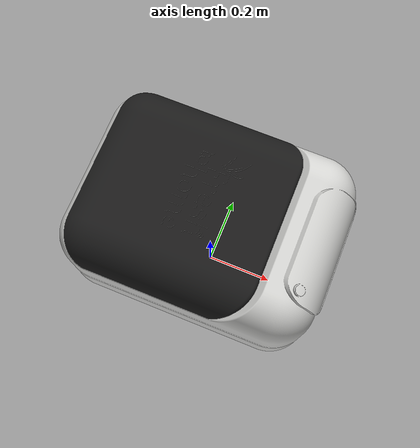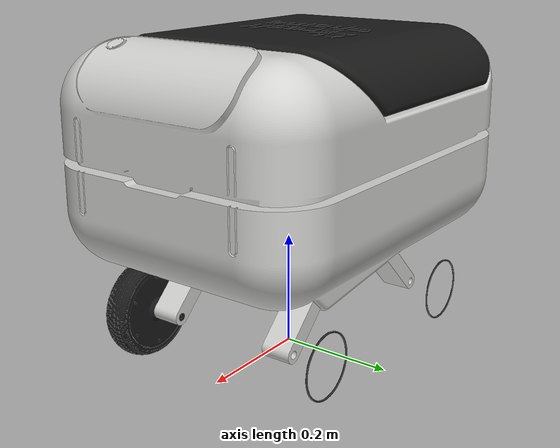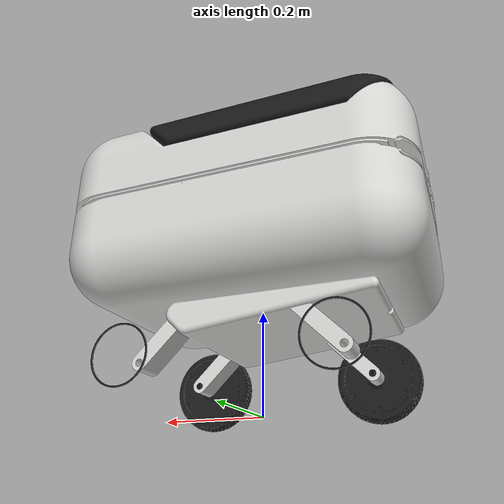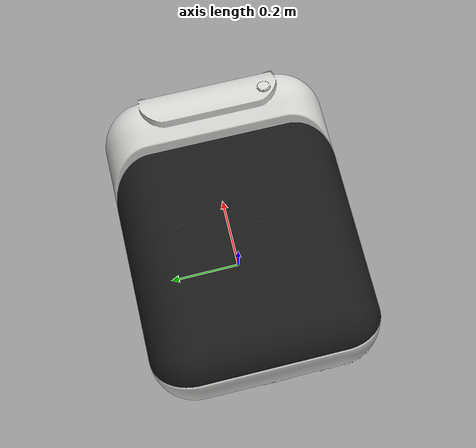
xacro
<?xml version="1.0" ?>
<robot name="finalfresh" xmlns:xacro="http://ros.org/wiki/xacro">

<xacro:include filename="$(find finalfresh_description)/urdf/robot.trans" />
<xacro:include filename="$(find finalfresh_description)/urdf/robot.gazebo.xacro" />

<link name="base_footprint"></link>
<joint name="base_footprint_to_base_link" type="fixed">
<parent link="base_footprint"/>
<child link="base_link" />
<origin rpy="0 0 0" xyz="0 0 0.318014"/>
</joint>

<link name="base_link">
<collision>
<origin xyz="0.181689 -0.142997 -0.232021" rpy="0 -0 1.249e-16" />
<geometry>
<mesh filename="package://finalfresh_description/meshes/component1.stl"/>
</geometry>
<material name="component1_material">
<color rgba="0.0980392 0.0980392 0.0980392 1.0"/>
</material>
</collision>
<collision>
<origin xyz="-1.16744 0.94699 -0.869947" rpy="0 -0 1.80411e-16" />
<geometry>
<mesh filename="package://finalfresh_description/meshes/component6.stl"/>
</geometry>
<material name="component6_material">
<color rgba="0.627451 0.627451 0.627451 1.0"/>
</material>
</collision>
<collision>
<origin xyz="-0.733912 1.62576 -0.729513" rpy="0 -0 1.80411e-16" />
<geometry>
<mesh filename="package://finalfresh_description/meshes/component2.stl"/>
</geometry>
<material name="component2_material">
<color rgba="0.627451 0.627451 0.627451 1.0"/>
</material>
</collision>
<collision>
<origin xyz="-0.188488 -0.0917969 -0.232021" rpy="4.08624e-14 4.58217e-30 -3.14159" />
<geometry>
<mesh filename="package://finalfresh_description/meshes/component1.stl"/>
</geometry>
<material name="component1_material">
<color rgba="0.0980392 0.0980392 0.0980392 1.0"/>
</material>
</collision>
<collision>
<origin xyz="-1.13629 1.06847 -1.00098" rpy="0 -0 1.80411e-16" />
<geometry>
<mesh filename="package://finalfresh_description/meshes/component7.stl"/>
</geometry>
<material name="component7_material">
<color rgba="0.0980392 0.0980392 0.0980392 1.0"/>
</material>
</collision>
<collision>
<origin xyz="-1.16744 0.94699 -0.869947" rpy="0 -0 1.80411e-16" />
<geometry>
<mesh filename="package://finalfresh_description/meshes/component6.stl"/>
</geometry>
<material name="component6_material">
<color rgba="0.627451 0.627451 0.627451 1.0"/>
</material>
</collision>
<collision>
<origin xyz="-0.733912 1.62576 -0.729513" rpy="0 -0 1.80411e-16" />
<geometry>
<mesh filename="package://finalfresh_description/meshes/component2.stl"/>
</geometry>
<material name="component2_material">
<color rgba="0.627451 0.627451 0.627451 1.0"/>
</material>
</collision>
<collision>
<origin xyz="-0.733912 1.62576 -0.729513" rpy="0 -0 1.80411e-16" />
<geometry>
<mesh filename="package://finalfresh_description/meshes/component2.stl"/>
</geometry>
<material name="component2_material">
<color rgba="0.627451 0.627451 0.627451 1.0"/>
</material>
</collision>
<collision>
<origin xyz="-1.16744 0.94699 -0.869947" rpy="0 -0 1.80411e-16" />
<geometry>
<mesh filename="package://finalfresh_description/meshes/component6.stl"/>
</geometry>
<material name="component6_material">
<color rgba="0.627451 0.627451 0.627451 1.0"/>
</material>
</collision>
<collision>
<origin xyz="-0.733912 1.62576 -0.729513" rpy="0 -0 1.80411e-16" />
<geometry>
<mesh filename="package://finalfresh_description/meshes/component2.stl"/>
</geometry>
<material name="component2_material">
<color rgba="0.627451 0.627451 0.627451 1.0"/>
</material>
</collision>
<collision>
<origin xyz="-0.733912 1.62576 -0.729513" rpy="0 -0 1.80411e-16" />
<geometry>
<mesh filename="package://finalfresh_description/meshes/component2.stl"/>
</geometry>
<material name="component2_material">
<color rgba="0.627451 0.627451 0.627451 1.0"/>
</material>
</collision>
<collision>
<origin xyz="-0.733912 1.62576 -0.729513" rpy="0 -0 1.80411e-16" />
<geometry>
<mesh filename="package://finalfresh_description/meshes/component2.stl"/>
</geometry>
<material name="component2_material">
<color rgba="0.627451 0.627451 0.627451 1.0"/>
</material>
</collision>
<collision>
<origin xyz="-0.188488 0.143203 -0.232021" rpy="4.08624e-14 -8.01149e-14 3.14159" />
<geometry>
<mesh filename="package://finalfresh_description/meshes/component1.stl"/>
</geometry>
<material name="component1_material">
<color rgba="0.0980392 0.0980392 0.0980392 1.0"/>
</material>
</collision>
<collision>
<origin xyz="-0.0839315 0.825754 -1.1338" rpy="4.0626e-14 -0.000575215 -3.14159" />
<geometry>
<mesh filename="package://finalfresh_description/meshes/component4.stl"/>
</geometry>
<material name="component4_material">
<color rgba="0.0980392 0.0980392 0.0980392 1.0"/>
</material>
</collision>
<collision>
<origin xyz="-1.16744 0.94699 -0.869947" rpy="0 -0 1.80411e-16" />
<geometry>
<mesh filename="package://finalfresh_description/meshes/component6.stl"/>
</geometry>
<material name="component6_material">
<color rgba="0.627451 0.627451 0.627451 1.0"/>
</material>
</collision>
<collision>
<origin xyz="-1.16744 0.94699 -0.869947" rpy="0 -0 1.80411e-16" />
<geometry>
<mesh filename="package://finalfresh_description/meshes/component6.stl"/>
</geometry>
<material name="component6_material">
<color rgba="0.627451 0.627451 0.627451 1.0"/>
</material>
</collision>
<collision>
<origin xyz="-0.733912 1.62576 -0.729513" rpy="-6.12323e-17 2.49603e-29 1.80411e-16" />
<geometry>
<mesh filename="package://finalfresh_description/meshes/upper_base.stl"/>
</geometry>
<material name="upper_base_material">
<color rgba="0.964706 0.964706 0.952941 1.0"/>
</material>
</collision>
<collision>
<origin xyz="-1.16744 0.94699 -0.869947" rpy="0 -0 1.80411e-16" />
<geometry>
<mesh filename="package://finalfresh_description/meshes/component6.stl"/>
</geometry>
<material name="component6_material">
<color rgba="0.627451 0.627451 0.627451 1.0"/>
</material>
</collision>
<collision>
<origin xyz="-0.140445 -0.507503 -1.32618" rpy="0 -0 1.80411e-16" />
<geometry>
<mesh filename="package://finalfresh_description/meshes/component5.stl"/>
</geometry>
<material name="component5_material">
<color rgba="0.627451 0.627451 0.627451 1.0"/>
</material>
</collision>
<collision>
<origin xyz="-0.733912 1.62576 -0.729513" rpy="0 -0 1.80411e-16" />
<geometry>
<mesh filename="package://finalfresh_description/meshes/component2.stl"/>
</geometry>
<material name="component2_material">
<color rgba="0.627451 0.627451 0.627451 1.0"/>
</material>
</collision>
<collision>
<origin xyz="-1.16744 0.94699 -0.869947" rpy="0 -0 1.80411e-16" />
<geometry>
<mesh filename="package://finalfresh_description/meshes/component6.stl"/>
</geometry>
<material name="component6_material">
<color rgba="0.627451 0.627451 0.627451 1.0"/>
</material>
</collision>
<collision>
<origin xyz="-1.13129 1.06847 -1.00098" rpy="0 -0 1.80411e-16" />
<geometry>
<mesh filename="package://finalfresh_description/meshes/lower_base.stl"/>
</geometry>
<material name="lower_base_material">
<color rgba="0.964706 0.964706 0.952941 1.0"/>
</material>
</collision>
<collision>
<origin xyz="-0.733912 1.62576 -0.729513" rpy="0 -0 1.80411e-16" />
<geometry>
<mesh filename="package://finalfresh_description/meshes/component2.stl"/>
</geometry>
<material name="component2_material">
<color rgba="0.627451 0.627451 0.627451 1.0"/>
</material>
</collision>
<collision>
<origin xyz="0.181689 0.0918031 -0.232021" rpy="0 -0 1.249e-16" />
<geometry>
<mesh filename="package://finalfresh_description/meshes/component1.stl"/>
</geometry>
<material name="component1_material">
<color rgba="0.0980392 0.0980392 0.0980392 1.0"/>
</material>
</collision>
<visual>
<origin xyz="0 0 0" rpy="0 -0 0" />
<geometry>
<mesh filename="package://finalfresh_description/meshes/base_link_new_5.dae"/>
</geometry>
<material name="base_link_material">
<color rgba="0.819182 0.819182 0.809403 1.0"/>
</material>
</visual>
<inertial>
<origin xyz="-0.00886666 -3.82194e-05 -0.0364475" rpy="0 0 0"/>
<mass value="54.4024" />
<inertia ixx="1.64694" ixy="-0.000325604"  ixz="-0.0856798" iyy="2.75505" iyz="0.000464311" izz="3.25161" />
</inertial>
</link>

<link name="l_hub_motor">
<collision>
<origin xyz="-2.77556e-17 0 -0.0581" rpy="1.5708 3.08149e-33 0" />
<geometry>
<mesh filename="package://finalfresh_description/meshes/hub_motor.stl"/>
</geometry>
<material name="hub_motor_material">
<color rgba="0.0980392 0.0980392 0.0980392 1.0"/>
</material>
</collision>
<collision>
<origin xyz="-1.11022e-16 0 -0.0581" rpy="1.5708 1.81799e-15 -3.14159" />
<geometry>
<mesh filename="package://finalfresh_description/meshes/component1.stl"/>
</geometry>
<material name="component1_material">
<color rgba="0.384314 0.635294 0.403922 1.0"/>
</material>
</collision>
<visual>
<origin xyz="0 0 0" rpy="0 -0 0" />
<geometry>
<mesh filename="package://finalfresh_description/meshes/l_hub_motor_new.dae"/>
</geometry>
<material name="l_hub_motor_material">
<color rgba="0.0987575 0.0993873 0.0988067 1.0"/>
</material>
</visual>
<inertial>
<origin xyz="-8.02719e-06 4.74857e-06 -0.0801665" rpy="0 0 0"/>
<mass value="0.838996" />
<inertia ixx="0.00188943" ixy="-2.00837e-08"  ixz="-1.3693e-07" iyy="0.00188939" iyz="-3.24182e-07" izz="0.00338255" />
</inertial>
</link>

<joint name="front_right" type="continuous">
<origin xyz="0.181689 -0.0917969 -0.232021" rpy="-1.5708 -0 1.249e-16" />
<parent link="base_link" />
<child link="l_hub_motor" />
<axis xyz="0 0 1"/>
<limit effort="1" velocity="20" />
<joint_properties friction="0.0"/>
</joint>

<link name="l_hub_motor_2">
<collision>
<origin xyz="-2.77556e-17 0 -0.0581" rpy="1.5708 -9.64083e-33 0" />
<geometry>
<mesh filename="package://finalfresh_description/meshes/hub_motor.stl"/>
</geometry>
<material name="hub_motor_material">
<color rgba="0.0980392 0.0980392 0.0980392 1.0"/>
</material>
</collision>
<collision>
<origin xyz="-1.11022e-16 0 -0.0581" rpy="1.5708 1.83187e-15 -3.14159" />
<geometry>
<mesh filename="package://finalfresh_description/meshes/component1.stl"/>
</geometry>
<material name="component1_material">
<color rgba="0.384314 0.635294 0.403922 1.0"/>
</material>
</collision>
<visual>
<origin xyz="0 0 0" rpy="0 -0 0" />
<geometry>
<mesh filename="package://finalfresh_description/meshes/l_hub_motor_new.dae"/>
</geometry>
<material name="l_hub_motor_2_material">
<color rgba="0.0987575 0.0993873 0.0988067 1.0"/>
</material>
</visual>
<inertial>
<origin xyz="-8.02719e-06 4.74857e-06 -0.0801665" rpy="0 0 0"/>
<mass value="0.838996" />
<inertia ixx="0.00188943" ixy="-2.00837e-08"  ixz="-1.3693e-07" iyy="0.00188939" iyz="-3.24182e-07" izz="0.00338255" />
</inertial>
</link>

<joint name="back_right" type="continuous">
<origin xyz="-0.188488 -0.0917969 -0.232021" rpy="-1.5708 1.22006e-14 1.249e-16" />
<parent link="base_link" />
<child link="l_hub_motor_2" />
<axis xyz="0 0 1"/>
<limit effort="1" velocity="20" />
<joint_properties friction="0.0"/>
</joint>

<link name="lid">
<collision>
<origin xyz="-0.827388 -1.19928 -1.86847" rpy="-1.5708 8.60864e-33 0" />
<geometry>
<mesh filename="package://finalfresh_description/meshes/lid.stl"/>
</geometry>
<material name="lid_material">
<color rgba="0.0980392 0.0980392 0.0980392 1.0"/>
</material>
</collision>
<collision>
<origin xyz="-1.38557 -0.251648 -1.09881" rpy="-1.5708 -1.89199e-15 -0.785398" />
<geometry>
<mesh filename="package://finalfresh_description/meshes/composite_part_1.stl"/>
</geometry>
<material name="composite_part_1_material">
<color rgba="0.972549 0.529412 0.00392157 1.0"/>
</material>
</collision>
<visual>
<origin xyz="0 0 0" rpy="0 -0 0" />
<geometry>
<mesh filename="package://finalfresh_description/meshes/lid_new.dae"/>
</geometry>
<material name="lid_material">
<color rgba="0.0997894 0.0989025 0.0978509 1.0"/>
</material>
</visual>
<inertial>
<origin xyz="0.239966 0.00954986 -5.61883e-05" rpy="0 0 0"/>
<mass value="11.0226" />
<inertia ixx="0.232328" ixy="0.00219681"  ixz="6.6045e-05" iyy="0.419919" iyz="4.22672e-05" izz="0.197173" />
</inertial>
</link>

<joint name="lid_joint" type="revolute">
<origin xyz="-0.30786 1.7899e-08 0.202016" rpy="1.5708 1.95829e-13 1.249e-16" />
<parent link="base_link" />
<child link="lid" />
<axis xyz="0 0 1"/>
<limit effort="1" velocity="20" lower="0" upper="1.5708"/>
<joint_properties friction="0.0"/>
</joint>

<link name="r_hub_motor">
<collision>
<origin xyz="-1.11022e-16 0 0.0581" rpy="-1.5708 -1.249e-16 -3.76325e-48" />
<geometry>
<mesh filename="package://finalfresh_description/meshes/component1.stl"/>
</geometry>
<material name="component1_material">
<color rgba="0.384314 0.635294 0.403922 1.0"/>
</material>
</collision>
<collision>
<origin xyz="-2.77556e-17 0 0.0581" rpy="-1.5708 3.08149e-33 1.51929e-64" />
<geometry>
<mesh filename="package://finalfresh_description/meshes/hub_motor.stl"/>
</geometry>
<material name="hub_motor_material">
<color rgba="0.0980392 0.0980392 0.0980392 1.0"/>
</material>
</collision>
<visual>
<origin xyz="0 0 0" rpy="0 -0 0" />
<geometry>
<mesh filename="package://finalfresh_description/meshes/r_hub_motor_new.dae"/>
</geometry>
<material name="r_hub_motor_material">
<color rgba="0.0987575 0.0993873 0.0988067 1.0"/>
</material>
</visual>
<inertial>
<origin xyz="-8.02719e-06 -4.74857e-06 0.0801665" rpy="0 0 0"/>
<mass value="0.838996" />
<inertia ixx="0.00188943" ixy="2.00837e-08"  ixz="1.3693e-07" iyy="0.00188939" iyz="-3.24182e-07" izz="0.00338255" />
</inertial>
</link>

<joint name="front_left" type="continuous">
<origin xyz="0.181689 0.0918031 -0.232021" rpy="1.5708 3.07902e-48 -3.14159" />
<parent link="base_link" />
<child link="r_hub_motor" />
<axis xyz="0 0 1"/>
<limit effort="1" velocity="20" />
<joint_properties friction="0.0"/>
</joint>

<link name="r_hub_motor_2">
<collision>
<origin xyz="-5.55112e-17 0 0.0581" rpy="-1.5708 -2.0874e-26 6.26843e-30" />
<geometry>
<mesh filename="package://finalfresh_description/meshes/component1.stl"/>
</geometry>
<material name="component1_material">
<color rgba="0.384314 0.635294 0.403922 1.0"/>
</material>
</collision>
<collision>
<origin xyz="0 0 0.0581" rpy="-1.5708 -5.56696e-34 6.26843e-30" />
<geometry>
<mesh filename="package://finalfresh_description/meshes/hub_motor.stl"/>
</geometry>
<material name="hub_motor_material">
<color rgba="0.0980392 0.0980392 0.0980392 1.0"/>
</material>
</collision>
<visual>
<origin xyz="0 0 0" rpy="0 -0 0" />
<geometry>
<mesh filename="package://finalfresh_description/meshes/r_hub_motor_new.dae"/>
</geometry>
<material name="r_hub_motor_2_material">
<color rgba="0.0987575 0.0993873 0.0988067 1.0"/>
</material>
</visual>
<inertial>
<origin xyz="-8.02719e-06 -4.74857e-06 0.0801665" rpy="0 0 0"/>
<mass value="0.838996" />
<inertia ixx="0.00188943" ixy="2.00837e-08"  ixz="1.3693e-07" iyy="0.00188939" iyz="-3.24182e-07" izz="0.00338255" />
</inertial>
</link>

<joint name="back_left" type="continuous">
<origin xyz="-0.188488 0.0920031 -0.232021" rpy="1.5708 -7.71173e-14 3.14159" />
<parent link="base_link" />
<child link="r_hub_motor_2" />
<axis xyz="0 0 1"/>
<limit effort="1" velocity="20" />
<joint_properties friction="0.0"/>
</joint>

</robot>
